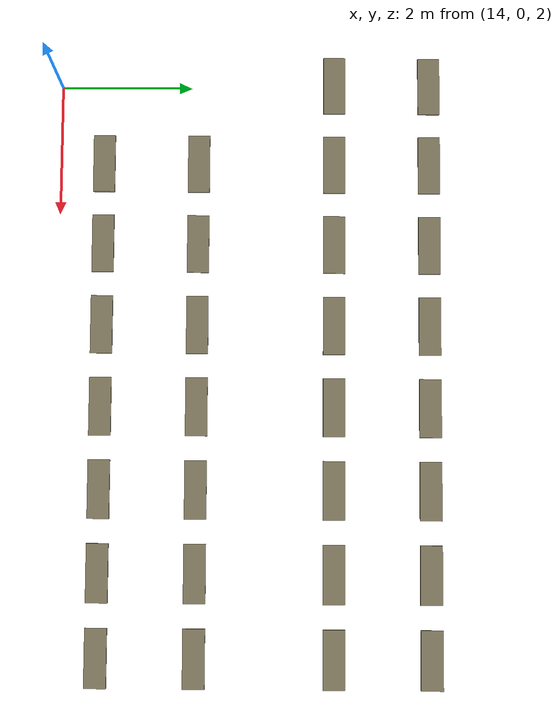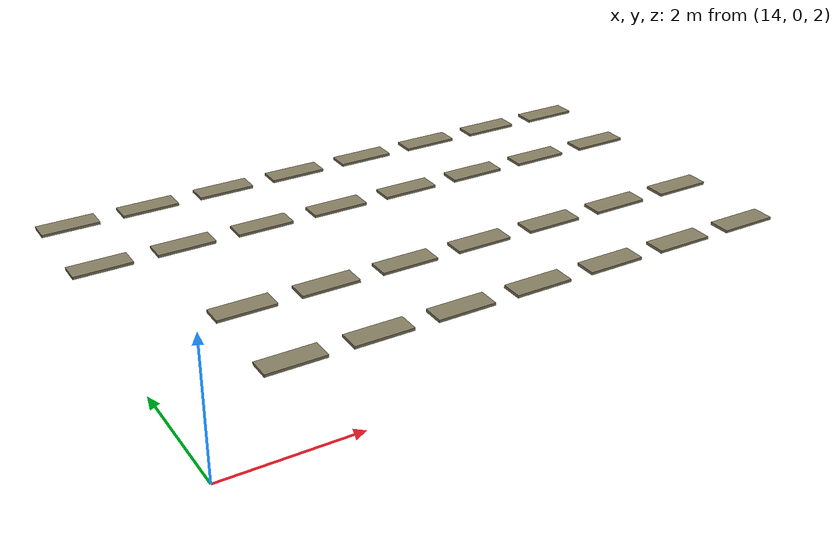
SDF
<sdf version="1.10">
 <model name="room_fluorescent_lights">
  <static>true</static>
  <link name="ceiling_lights_zone3_r1_c3">
   <pose>14.2 4.15 2.8 0 0 0</pose>
   <collision name="ceiling_lights_zone3_r1_c3_collision">
    <geometry><box><size>0.85 0.32 0.04</size></box></geometry>
   </collision>
   <visual name="ceiling_lights_zone3_r1_c3_visual">
    <pose>0 0 -0.02 0 0 0</pose>
    <geometry><box><size>0.85 0.32 0.04</size></box></geometry>
    <material>
     <ambient>0.38 0.36 0.29 1</ambient>
     <diffuse>0.52 0.49 0.38 1</diffuse>
     <emissive>0.30 0.27 0.19 1</emissive>
     <specular>0.06 0.06 0.05 1</specular>
    </material>
   </visual>
   <light name="ceiling_lights_zone3_r1_c3_spot" type="spot">
    <pose>0 0 -0.035 0 0 0</pose>
    <diffuse>0.32 0.305 0.265 1</diffuse>
    <specular>0.08 0.08 0.065 1</specular>
    <attenuation>
     <range>9.2</range>
     <constant>1.05</constant>
     <linear>0.23</linear>
     <quadratic>0.035</quadratic>
    </attenuation>
    <direction>0 0 -1</direction>
    <spot><inner_angle>1.45</inner_angle><outer_angle>2.45</outer_angle><falloff>0.5</falloff></spot>
    <cast_shadows>false</cast_shadows>
   </light>
  </link>
  <link name="ceiling_lights_zone3_r1_c4">
   <pose>14.2 5.55 2.8 0 0 0</pose>
   <collision name="ceiling_lights_zone3_r1_c4_collision">
    <geometry><box><size>0.85 0.32 0.04</size></box></geometry>
   </collision>
   <visual name="ceiling_lights_zone3_r1_c4_visual">
    <pose>0 0 -0.02 0 0 0</pose>
    <geometry><box><size>0.85 0.32 0.04</size></box></geometry>
    <material>
     <ambient>0.38 0.36 0.29 1</ambient>
     <diffuse>0.52 0.49 0.38 1</diffuse>
     <emissive>0.30 0.27 0.19 1</emissive>
     <specular>0.06 0.06 0.05 1</specular>
    </material>
   </visual>
   <light name="ceiling_lights_zone3_r1_c4_spot" type="spot">
    <pose>0 0 -0.035 0 0 0</pose>
    <diffuse>0.32 0.305 0.265 1</diffuse>
    <specular>0.08 0.08 0.065 1</specular>
    <attenuation>
     <range>9.2</range>
     <constant>1.05</constant>
     <linear>0.23</linear>
     <quadratic>0.035</quadratic>
    </attenuation>
    <direction>0 0 -1</direction>
    <spot><inner_angle>1.45</inner_angle><outer_angle>2.45</outer_angle><falloff>0.5</falloff></spot>
    <cast_shadows>false</cast_shadows>
   </light>
  </link>
  <link name="ceiling_lights_zone3_r2_c1">
   <pose>15.4 0.75 2.8 0 0 0</pose>
   <collision name="ceiling_lights_zone3_r2_c1_collision">
    <geometry><box><size>0.85 0.32 0.04</size></box></geometry>
   </collision>
   <visual name="ceiling_lights_zone3_r2_c1_visual">
    <pose>0 0 -0.02 0 0 0</pose>
    <geometry><box><size>0.85 0.32 0.04</size></box></geometry>
    <material>
     <ambient>0.38 0.36 0.29 1</ambient>
     <diffuse>0.52 0.49 0.38 1</diffuse>
     <emissive>0.30 0.27 0.19 1</emissive>
     <specular>0.06 0.06 0.05 1</specular>
    </material>
   </visual>
   <light name="ceiling_lights_zone3_r2_c1_spot" type="spot">
    <pose>0 0 -0.035 0 0 0</pose>
    <diffuse>0.32 0.305 0.265 1</diffuse>
    <specular>0.08 0.08 0.065 1</specular>
    <attenuation>
     <range>9.2</range>
     <constant>1.05</constant>
     <linear>0.23</linear>
     <quadratic>0.035</quadratic>
    </attenuation>
    <direction>0 0 -1</direction>
    <spot><inner_angle>1.45</inner_angle><outer_angle>2.45</outer_angle><falloff>0.5</falloff></spot>
    <cast_shadows>false</cast_shadows>
   </light>
  </link>
  <link name="ceiling_lights_zone3_r2_c2">
   <pose>15.4 2.15 2.8 0 0 0</pose>
   <collision name="ceiling_lights_zone3_r2_c2_collision">
    <geometry><box><size>0.85 0.32 0.04</size></box></geometry>
   </collision>
   <visual name="ceiling_lights_zone3_r2_c2_visual">
    <pose>0 0 -0.02 0 0 0</pose>
    <geometry><box><size>0.85 0.32 0.04</size></box></geometry>
    <material>
     <ambient>0.38 0.36 0.29 1</ambient>
     <diffuse>0.52 0.49 0.38 1</diffuse>
     <emissive>0.30 0.27 0.19 1</emissive>
     <specular>0.06 0.06 0.05 1</specular>
    </material>
   </visual>
   <light name="ceiling_lights_zone3_r2_c2_spot" type="spot">
    <pose>0 0 -0.035 0 0 0</pose>
    <diffuse>0.32 0.305 0.265 1</diffuse>
    <specular>0.08 0.08 0.065 1</specular>
    <attenuation>
     <range>9.2</range>
     <constant>1.05</constant>
     <linear>0.23</linear>
     <quadratic>0.035</quadratic>
    </attenuation>
    <direction>0 0 -1</direction>
    <spot><inner_angle>1.45</inner_angle><outer_angle>2.45</outer_angle><falloff>0.5</falloff></spot>
    <cast_shadows>false</cast_shadows>
   </light>
  </link>
  <link name="ceiling_lights_zone3_r2_c3">
   <pose>15.4 4.15 2.8 0 0 0</pose>
   <collision name="ceiling_lights_zone3_r2_c3_collision">
    <geometry><box><size>0.85 0.32 0.04</size></box></geometry>
   </collision>
   <visual name="ceiling_lights_zone3_r2_c3_visual">
    <pose>0 0 -0.02 0 0 0</pose>
    <geometry><box><size>0.85 0.32 0.04</size></box></geometry>
    <material>
     <ambient>0.38 0.36 0.29 1</ambient>
     <diffuse>0.52 0.49 0.38 1</diffuse>
     <emissive>0.30 0.27 0.19 1</emissive>
     <specular>0.06 0.06 0.05 1</specular>
    </material>
   </visual>
   <light name="ceiling_lights_zone3_r2_c3_spot" type="spot">
    <pose>0 0 -0.035 0 0 0</pose>
    <diffuse>0.32 0.305 0.265 1</diffuse>
    <specular>0.08 0.08 0.065 1</specular>
    <attenuation>
     <range>9.2</range>
     <constant>1.05</constant>
     <linear>0.23</linear>
     <quadratic>0.035</quadratic>
    </attenuation>
    <direction>0 0 -1</direction>
    <spot><inner_angle>1.45</inner_angle><outer_angle>2.45</outer_angle><falloff>0.5</falloff></spot>
    <cast_shadows>false</cast_shadows>
   </light>
  </link>
  <link name="ceiling_lights_zone3_r2_c4">
   <pose>15.4 5.55 2.8 0 0 0</pose>
   <collision name="ceiling_lights_zone3_r2_c4_collision">
    <geometry><box><size>0.85 0.32 0.04</size></box></geometry>
   </collision>
   <visual name="ceiling_lights_zone3_r2_c4_visual">
    <pose>0 0 -0.02 0 0 0</pose>
    <geometry><box><size>0.85 0.32 0.04</size></box></geometry>
    <material>
     <ambient>0.38 0.36 0.29 1</ambient>
     <diffuse>0.52 0.49 0.38 1</diffuse>
     <emissive>0.30 0.27 0.19 1</emissive>
     <specular>0.06 0.06 0.05 1</specular>
    </material>
   </visual>
   <light name="ceiling_lights_zone3_r2_c4_spot" type="spot">
    <pose>0 0 -0.035 0 0 0</pose>
    <diffuse>0.32 0.305 0.265 1</diffuse>
    <specular>0.08 0.08 0.065 1</specular>
    <attenuation>
     <range>9.2</range>
     <constant>1.05</constant>
     <linear>0.23</linear>
     <quadratic>0.035</quadratic>
    </attenuation>
    <direction>0 0 -1</direction>
    <spot><inner_angle>1.45</inner_angle><outer_angle>2.45</outer_angle><falloff>0.5</falloff></spot>
    <cast_shadows>false</cast_shadows>
   </light>
  </link>
  <link name="ceiling_lights_zone3_r3_c1">
   <pose>16.6 0.75 2.8 0 0 0</pose>
   <collision name="ceiling_lights_zone3_r3_c1_collision">
    <geometry><box><size>0.85 0.32 0.04</size></box></geometry>
   </collision>
   <visual name="ceiling_lights_zone3_r3_c1_visual">
    <pose>0 0 -0.02 0 0 0</pose>
    <geometry><box><size>0.85 0.32 0.04</size></box></geometry>
    <material>
     <ambient>0.38 0.36 0.29 1</ambient>
     <diffuse>0.52 0.49 0.38 1</diffuse>
     <emissive>0.30 0.27 0.19 1</emissive>
     <specular>0.06 0.06 0.05 1</specular>
    </material>
   </visual>
   <light name="ceiling_lights_zone3_r3_c1_spot" type="spot">
    <pose>0 0 -0.035 0 0 0</pose>
    <diffuse>0.32 0.305 0.265 1</diffuse>
    <specular>0.08 0.08 0.065 1</specular>
    <attenuation>
     <range>9.2</range>
     <constant>1.05</constant>
     <linear>0.23</linear>
     <quadratic>0.035</quadratic>
    </attenuation>
    <direction>0 0 -1</direction>
    <spot><inner_angle>1.45</inner_angle><outer_angle>2.45</outer_angle><falloff>0.5</falloff></spot>
    <cast_shadows>false</cast_shadows>
   </light>
  </link>
  <link name="ceiling_lights_zone3_r3_c2">
   <pose>16.6 2.15 2.8 0 0 0</pose>
   <collision name="ceiling_lights_zone3_r3_c2_collision">
    <geometry><box><size>0.85 0.32 0.04</size></box></geometry>
   </collision>
   <visual name="ceiling_lights_zone3_r3_c2_visual">
    <pose>0 0 -0.02 0 0 0</pose>
    <geometry><box><size>0.85 0.32 0.04</size></box></geometry>
    <material>
     <ambient>0.38 0.36 0.29 1</ambient>
     <diffuse>0.52 0.49 0.38 1</diffuse>
     <emissive>0.30 0.27 0.19 1</emissive>
     <specular>0.06 0.06 0.05 1</specular>
    </material>
   </visual>
   <light name="ceiling_lights_zone3_r3_c2_spot" type="spot">
    <pose>0 0 -0.035 0 0 0</pose>
    <diffuse>0.32 0.305 0.265 1</diffuse>
    <specular>0.08 0.08 0.065 1</specular>
    <attenuation>
     <range>9.2</range>
     <constant>1.05</constant>
     <linear>0.23</linear>
     <quadratic>0.035</quadratic>
    </attenuation>
    <direction>0 0 -1</direction>
    <spot><inner_angle>1.45</inner_angle><outer_angle>2.45</outer_angle><falloff>0.5</falloff></spot>
    <cast_shadows>false</cast_shadows>
   </light>
  </link>
  <link name="ceiling_lights_zone3_r3_c3">
   <pose>16.6 4.15 2.8 0 0 0</pose>
   <collision name="ceiling_lights_zone3_r3_c3_collision">
    <geometry><box><size>0.85 0.32 0.04</size></box></geometry>
   </collision>
   <visual name="ceiling_lights_zone3_r3_c3_visual">
    <pose>0 0 -0.02 0 0 0</pose>
    <geometry><box><size>0.85 0.32 0.04</size></box></geometry>
    <material>
     <ambient>0.38 0.36 0.29 1</ambient>
     <diffuse>0.52 0.49 0.38 1</diffuse>
     <emissive>0.30 0.27 0.19 1</emissive>
     <specular>0.06 0.06 0.05 1</specular>
    </material>
   </visual>
   <light name="ceiling_lights_zone3_r3_c3_spot" type="spot">
    <pose>0 0 -0.035 0 0 0</pose>
    <diffuse>0.32 0.305 0.265 1</diffuse>
    <specular>0.08 0.08 0.065 1</specular>
    <attenuation>
     <range>9.2</range>
     <constant>1.05</constant>
     <linear>0.23</linear>
     <quadratic>0.035</quadratic>
    </attenuation>
    <direction>0 0 -1</direction>
    <spot><inner_angle>1.45</inner_angle><outer_angle>2.45</outer_angle><falloff>0.5</falloff></spot>
    <cast_shadows>false</cast_shadows>
   </light>
  </link>
  <link name="ceiling_lights_zone3_r3_c4">
   <pose>16.6 5.55 2.8 0 0 0</pose>
   <collision name="ceiling_lights_zone3_r3_c4_collision">
    <geometry><box><size>0.85 0.32 0.04</size></box></geometry>
   </collision>
   <visual name="ceiling_lights_zone3_r3_c4_visual">
    <pose>0 0 -0.02 0 0 0</pose>
    <geometry><box><size>0.85 0.32 0.04</size></box></geometry>
    <material>
     <ambient>0.38 0.36 0.29 1</ambient>
     <diffuse>0.52 0.49 0.38 1</diffuse>
     <emissive>0.30 0.27 0.19 1</emissive>
     <specular>0.06 0.06 0.05 1</specular>
    </material>
   </visual>
   <light name="ceiling_lights_zone3_r3_c4_spot" type="spot">
    <pose>0 0 -0.035 0 0 0</pose>
    <diffuse>0.32 0.305 0.265 1</diffuse>
    <specular>0.08 0.08 0.065 1</specular>
    <attenuation>
     <range>9.2</range>
     <constant>1.05</constant>
     <linear>0.23</linear>
     <quadratic>0.035</quadratic>
    </attenuation>
    <direction>0 0 -1</direction>
    <spot><inner_angle>1.45</inner_angle><outer_angle>2.45</outer_angle><falloff>0.5</falloff></spot>
    <cast_shadows>false</cast_shadows>
   </light>
  </link>
  <link name="ceiling_lights_zone3_r4_c1">
   <pose>17.8 0.75 2.8 0 0 0</pose>
   <collision name="ceiling_lights_zone3_r4_c1_collision">
    <geometry><box><size>0.85 0.32 0.04</size></box></geometry>
   </collision>
   <visual name="ceiling_lights_zone3_r4_c1_visual">
    <pose>0 0 -0.02 0 0 0</pose>
    <geometry><box><size>0.85 0.32 0.04</size></box></geometry>
    <material>
     <ambient>0.38 0.36 0.29 1</ambient>
     <diffuse>0.52 0.49 0.38 1</diffuse>
     <emissive>0.30 0.27 0.19 1</emissive>
     <specular>0.06 0.06 0.05 1</specular>
    </material>
   </visual>
   <light name="ceiling_lights_zone3_r4_c1_spot" type="spot">
    <pose>0 0 -0.035 0 0 0</pose>
    <diffuse>0.32 0.305 0.265 1</diffuse>
    <specular>0.08 0.08 0.065 1</specular>
    <attenuation>
     <range>9.2</range>
     <constant>1.05</constant>
     <linear>0.23</linear>
     <quadratic>0.035</quadratic>
    </attenuation>
    <direction>0 0 -1</direction>
    <spot><inner_angle>1.45</inner_angle><outer_angle>2.45</outer_angle><falloff>0.5</falloff></spot>
    <cast_shadows>false</cast_shadows>
   </light>
  </link>
  <link name="ceiling_lights_zone3_r4_c2">
   <pose>17.8 2.15 2.8 0 0 0</pose>
   <collision name="ceiling_lights_zone3_r4_c2_collision">
    <geometry><box><size>0.85 0.32 0.04</size></box></geometry>
   </collision>
   <visual name="ceiling_lights_zone3_r4_c2_visual">
    <pose>0 0 -0.02 0 0 0</pose>
    <geometry><box><size>0.85 0.32 0.04</size></box></geometry>
    <material>
     <ambient>0.38 0.36 0.29 1</ambient>
     <diffuse>0.52 0.49 0.38 1</diffuse>
     <emissive>0.30 0.27 0.19 1</emissive>
     <specular>0.06 0.06 0.05 1</specular>
    </material>
   </visual>
   <light name="ceiling_lights_zone3_r4_c2_spot" type="spot">
    <pose>0 0 -0.035 0 0 0</pose>
    <diffuse>0.32 0.305 0.265 1</diffuse>
    <specular>0.08 0.08 0.065 1</specular>
    <attenuation>
     <range>9.2</range>
     <constant>1.05</constant>
     <linear>0.23</linear>
     <quadratic>0.035</quadratic>
    </attenuation>
    <direction>0 0 -1</direction>
    <spot><inner_angle>1.45</inner_angle><outer_angle>2.45</outer_angle><falloff>0.5</falloff></spot>
    <cast_shadows>false</cast_shadows>
   </light>
  </link>
  <link name="ceiling_lights_zone3_r4_c3">
   <pose>17.8 4.15 2.8 0 0 0</pose>
   <collision name="ceiling_lights_zone3_r4_c3_collision">
    <geometry><box><size>0.85 0.32 0.04</size></box></geometry>
   </collision>
   <visual name="ceiling_lights_zone3_r4_c3_visual">
    <pose>0 0 -0.02 0 0 0</pose>
    <geometry><box><size>0.85 0.32 0.04</size></box></geometry>
    <material>
     <ambient>0.38 0.36 0.29 1</ambient>
     <diffuse>0.52 0.49 0.38 1</diffuse>
     <emissive>0.30 0.27 0.19 1</emissive>
     <specular>0.06 0.06 0.05 1</specular>
    </material>
   </visual>
   <light name="ceiling_lights_zone3_r4_c3_spot" type="spot">
    <pose>0 0 -0.035 0 0 0</pose>
    <diffuse>0.32 0.305 0.265 1</diffuse>
    <specular>0.08 0.08 0.065 1</specular>
    <attenuation>
     <range>9.2</range>
     <constant>1.05</constant>
     <linear>0.23</linear>
     <quadratic>0.035</quadratic>
    </attenuation>
    <direction>0 0 -1</direction>
    <spot><inner_angle>1.45</inner_angle><outer_angle>2.45</outer_angle><falloff>0.5</falloff></spot>
    <cast_shadows>false</cast_shadows>
   </light>
  </link>
  <link name="ceiling_lights_zone3_r4_c4">
   <pose>17.8 5.55 2.8 0 0 0</pose>
   <collision name="ceiling_lights_zone3_r4_c4_collision">
    <geometry><box><size>0.85 0.32 0.04</size></box></geometry>
   </collision>
   <visual name="ceiling_lights_zone3_r4_c4_visual">
    <pose>0 0 -0.02 0 0 0</pose>
    <geometry><box><size>0.85 0.32 0.04</size></box></geometry>
    <material>
     <ambient>0.38 0.36 0.29 1</ambient>
     <diffuse>0.52 0.49 0.38 1</diffuse>
     <emissive>0.30 0.27 0.19 1</emissive>
     <specular>0.06 0.06 0.05 1</specular>
    </material>
   </visual>
   <light name="ceiling_lights_zone3_r4_c4_spot" type="spot">
    <pose>0 0 -0.035 0 0 0</pose>
    <diffuse>0.32 0.305 0.265 1</diffuse>
    <specular>0.08 0.08 0.065 1</specular>
    <attenuation>
     <range>9.2</range>
     <constant>1.05</constant>
     <linear>0.23</linear>
     <quadratic>0.035</quadratic>
    </attenuation>
    <direction>0 0 -1</direction>
    <spot><inner_angle>1.45</inner_angle><outer_angle>2.45</outer_angle><falloff>0.5</falloff></spot>
    <cast_shadows>false</cast_shadows>
   </light>
  </link>
  <link name="ceiling_lights_zone3_r5_c1">
   <pose>19 0.75 2.8 0 0 0</pose>
   <collision name="ceiling_lights_zone3_r5_c1_collision">
    <geometry><box><size>0.85 0.32 0.04</size></box></geometry>
   </collision>
   <visual name="ceiling_lights_zone3_r5_c1_visual">
    <pose>0 0 -0.02 0 0 0</pose>
    <geometry><box><size>0.85 0.32 0.04</size></box></geometry>
    <material>
     <ambient>0.38 0.36 0.29 1</ambient>
     <diffuse>0.52 0.49 0.38 1</diffuse>
     <emissive>0.30 0.27 0.19 1</emissive>
     <specular>0.06 0.06 0.05 1</specular>
    </material>
   </visual>
   <light name="ceiling_lights_zone3_r5_c1_spot" type="spot">
    <pose>0 0 -0.035 0 0 0</pose>
    <diffuse>0.32 0.305 0.265 1</diffuse>
    <specular>0.08 0.08 0.065 1</specular>
    <attenuation>
     <range>9.2</range>
     <constant>1.05</constant>
     <linear>0.23</linear>
     <quadratic>0.035</quadratic>
    </attenuation>
    <direction>0 0 -1</direction>
    <spot><inner_angle>1.45</inner_angle><outer_angle>2.45</outer_angle><falloff>0.5</falloff></spot>
    <cast_shadows>false</cast_shadows>
   </light>
  </link>
  <link name="ceiling_lights_zone3_r5_c2">
   <pose>19 2.15 2.8 0 0 0</pose>
   <collision name="ceiling_lights_zone3_r5_c2_collision">
    <geometry><box><size>0.85 0.32 0.04</size></box></geometry>
   </collision>
   <visual name="ceiling_lights_zone3_r5_c2_visual">
    <pose>0 0 -0.02 0 0 0</pose>
    <geometry><box><size>0.85 0.32 0.04</size></box></geometry>
    <material>
     <ambient>0.38 0.36 0.29 1</ambient>
     <diffuse>0.52 0.49 0.38 1</diffuse>
     <emissive>0.30 0.27 0.19 1</emissive>
     <specular>0.06 0.06 0.05 1</specular>
    </material>
   </visual>
   <light name="ceiling_lights_zone3_r5_c2_spot" type="spot">
    <pose>0 0 -0.035 0 0 0</pose>
    <diffuse>0.32 0.305 0.265 1</diffuse>
    <specular>0.08 0.08 0.065 1</specular>
    <attenuation>
     <range>9.2</range>
     <constant>1.05</constant>
     <linear>0.23</linear>
     <quadratic>0.035</quadratic>
    </attenuation>
    <direction>0 0 -1</direction>
    <spot><inner_angle>1.45</inner_angle><outer_angle>2.45</outer_angle><falloff>0.5</falloff></spot>
    <cast_shadows>false</cast_shadows>
   </light>
  </link>
  <link name="ceiling_lights_zone3_r5_c3">
   <pose>19 4.15 2.8 0 0 0</pose>
   <collision name="ceiling_lights_zone3_r5_c3_collision">
    <geometry><box><size>0.85 0.32 0.04</size></box></geometry>
   </collision>
   <visual name="ceiling_lights_zone3_r5_c3_visual">
    <pose>0 0 -0.02 0 0 0</pose>
    <geometry><box><size>0.85 0.32 0.04</size></box></geometry>
    <material>
     <ambient>0.38 0.36 0.29 1</ambient>
     <diffuse>0.52 0.49 0.38 1</diffuse>
     <emissive>0.30 0.27 0.19 1</emissive>
     <specular>0.06 0.06 0.05 1</specular>
    </material>
   </visual>
   <light name="ceiling_lights_zone3_r5_c3_spot" type="spot">
    <pose>0 0 -0.035 0 0 0</pose>
    <diffuse>0.32 0.305 0.265 1</diffuse>
    <specular>0.08 0.08 0.065 1</specular>
    <attenuation>
     <range>9.2</range>
     <constant>1.05</constant>
     <linear>0.23</linear>
     <quadratic>0.035</quadratic>
    </attenuation>
    <direction>0 0 -1</direction>
    <spot><inner_angle>1.45</inner_angle><outer_angle>2.45</outer_angle><falloff>0.5</falloff></spot>
    <cast_shadows>false</cast_shadows>
   </light>
  </link>
  <link name="ceiling_lights_zone3_r5_c4">
   <pose>19 5.55 2.8 0 0 0</pose>
   <collision name="ceiling_lights_zone3_r5_c4_collision">
    <geometry><box><size>0.85 0.32 0.04</size></box></geometry>
   </collision>
   <visual name="ceiling_lights_zone3_r5_c4_visual">
    <pose>0 0 -0.02 0 0 0</pose>
    <geometry><box><size>0.85 0.32 0.04</size></box></geometry>
    <material>
     <ambient>0.38 0.36 0.29 1</ambient>
     <diffuse>0.52 0.49 0.38 1</diffuse>
     <emissive>0.30 0.27 0.19 1</emissive>
     <specular>0.06 0.06 0.05 1</specular>
    </material>
   </visual>
   <light name="ceiling_lights_zone3_r5_c4_spot" type="spot">
    <pose>0 0 -0.035 0 0 0</pose>
    <diffuse>0.32 0.305 0.265 1</diffuse>
    <specular>0.08 0.08 0.065 1</specular>
    <attenuation>
     <range>9.2</range>
     <constant>1.05</constant>
     <linear>0.23</linear>
     <quadratic>0.035</quadratic>
    </attenuation>
    <direction>0 0 -1</direction>
    <spot><inner_angle>1.45</inner_angle><outer_angle>2.45</outer_angle><falloff>0.5</falloff></spot>
    <cast_shadows>false</cast_shadows>
   </light>
  </link>
  <link name="ceiling_lights_zone3_r6_c1">
   <pose>20.2 0.75 2.8 0 0 0</pose>
   <collision name="ceiling_lights_zone3_r6_c1_collision">
    <geometry><box><size>0.85 0.32 0.04</size></box></geometry>
   </collision>
   <visual name="ceiling_lights_zone3_r6_c1_visual">
    <pose>0 0 -0.02 0 0 0</pose>
    <geometry><box><size>0.85 0.32 0.04</size></box></geometry>
    <material>
     <ambient>0.38 0.36 0.29 1</ambient>
     <diffuse>0.52 0.49 0.38 1</diffuse>
     <emissive>0.30 0.27 0.19 1</emissive>
     <specular>0.06 0.06 0.05 1</specular>
    </material>
   </visual>
   <light name="ceiling_lights_zone3_r6_c1_spot" type="spot">
    <pose>0 0 -0.035 0 0 0</pose>
    <diffuse>0.32 0.305 0.265 1</diffuse>
    <specular>0.08 0.08 0.065 1</specular>
    <attenuation>
     <range>9.2</range>
     <constant>1.05</constant>
     <linear>0.23</linear>
     <quadratic>0.035</quadratic>
    </attenuation>
    <direction>0 0 -1</direction>
    <spot><inner_angle>1.45</inner_angle><outer_angle>2.45</outer_angle><falloff>0.5</falloff></spot>
    <cast_shadows>false</cast_shadows>
   </light>
  </link>
  <link name="ceiling_lights_zone3_r6_c2">
   <pose>20.2 2.15 2.8 0 0 0</pose>
   <collision name="ceiling_lights_zone3_r6_c2_collision">
    <geometry><box><size>0.85 0.32 0.04</size></box></geometry>
   </collision>
   <visual name="ceiling_lights_zone3_r6_c2_visual">
    <pose>0 0 -0.02 0 0 0</pose>
    <geometry><box><size>0.85 0.32 0.04</size></box></geometry>
    <material>
     <ambient>0.38 0.36 0.29 1</ambient>
     <diffuse>0.52 0.49 0.38 1</diffuse>
     <emissive>0.30 0.27 0.19 1</emissive>
     <specular>0.06 0.06 0.05 1</specular>
    </material>
   </visual>
   <light name="ceiling_lights_zone3_r6_c2_spot" type="spot">
    <pose>0 0 -0.035 0 0 0</pose>
    <diffuse>0.32 0.305 0.265 1</diffuse>
    <specular>0.08 0.08 0.065 1</specular>
    <attenuation>
     <range>9.2</range>
     <constant>1.05</constant>
     <linear>0.23</linear>
     <quadratic>0.035</quadratic>
    </attenuation>
    <direction>0 0 -1</direction>
    <spot><inner_angle>1.45</inner_angle><outer_angle>2.45</outer_angle><falloff>0.5</falloff></spot>
    <cast_shadows>false</cast_shadows>
   </light>
  </link>
  <link name="ceiling_lights_zone3_r6_c3">
   <pose>20.2 4.15 2.8 0 0 0</pose>
   <collision name="ceiling_lights_zone3_r6_c3_collision">
    <geometry><box><size>0.85 0.32 0.04</size></box></geometry>
   </collision>
   <visual name="ceiling_lights_zone3_r6_c3_visual">
    <pose>0 0 -0.02 0 0 0</pose>
    <geometry><box><size>0.85 0.32 0.04</size></box></geometry>
    <material>
     <ambient>0.38 0.36 0.29 1</ambient>
     <diffuse>0.52 0.49 0.38 1</diffuse>
     <emissive>0.30 0.27 0.19 1</emissive>
     <specular>0.06 0.06 0.05 1</specular>
    </material>
   </visual>
   <light name="ceiling_lights_zone3_r6_c3_spot" type="spot">
    <pose>0 0 -0.035 0 0 0</pose>
    <diffuse>0.32 0.305 0.265 1</diffuse>
    <specular>0.08 0.08 0.065 1</specular>
    <attenuation>
     <range>9.2</range>
     <constant>1.05</constant>
     <linear>0.23</linear>
     <quadratic>0.035</quadratic>
    </attenuation>
    <direction>0 0 -1</direction>
    <spot><inner_angle>1.45</inner_angle><outer_angle>2.45</outer_angle><falloff>0.5</falloff></spot>
    <cast_shadows>false</cast_shadows>
   </light>
  </link>
  <link name="ceiling_lights_zone3_r6_c4">
   <pose>20.2 5.55 2.8 0 0 0</pose>
   <collision name="ceiling_lights_zone3_r6_c4_collision">
    <geometry><box><size>0.85 0.32 0.04</size></box></geometry>
   </collision>
   <visual name="ceiling_lights_zone3_r6_c4_visual">
    <pose>0 0 -0.02 0 0 0</pose>
    <geometry><box><size>0.85 0.32 0.04</size></box></geometry>
    <material>
     <ambient>0.38 0.36 0.29 1</ambient>
     <diffuse>0.52 0.49 0.38 1</diffuse>
     <emissive>0.30 0.27 0.19 1</emissive>
     <specular>0.06 0.06 0.05 1</specular>
    </material>
   </visual>
   <light name="ceiling_lights_zone3_r6_c4_spot" type="spot">
    <pose>0 0 -0.035 0 0 0</pose>
    <diffuse>0.32 0.305 0.265 1</diffuse>
    <specular>0.08 0.08 0.065 1</specular>
    <attenuation>
     <range>9.2</range>
     <constant>1.05</constant>
     <linear>0.23</linear>
     <quadratic>0.035</quadratic>
    </attenuation>
    <direction>0 0 -1</direction>
    <spot><inner_angle>1.45</inner_angle><outer_angle>2.45</outer_angle><falloff>0.5</falloff></spot>
    <cast_shadows>false</cast_shadows>
   </light>
  </link>
  <link name="ceiling_lights_zone3_r7_c1">
   <pose>21.4 0.75 2.8 0 0 0</pose>
   <collision name="ceiling_lights_zone3_r7_c1_collision">
    <geometry><box><size>0.85 0.32 0.04</size></box></geometry>
   </collision>
   <visual name="ceiling_lights_zone3_r7_c1_visual">
    <pose>0 0 -0.02 0 0 0</pose>
    <geometry><box><size>0.85 0.32 0.04</size></box></geometry>
    <material>
     <ambient>0.38 0.36 0.29 1</ambient>
     <diffuse>0.52 0.49 0.38 1</diffuse>
     <emissive>0.30 0.27 0.19 1</emissive>
     <specular>0.06 0.06 0.05 1</specular>
    </material>
   </visual>
   <light name="ceiling_lights_zone3_r7_c1_spot" type="spot">
    <pose>0 0 -0.035 0 0 0</pose>
    <diffuse>0.32 0.305 0.265 1</diffuse>
    <specular>0.08 0.08 0.065 1</specular>
    <attenuation>
     <range>9.2</range>
     <constant>1.05</constant>
     <linear>0.23</linear>
     <quadratic>0.035</quadratic>
    </attenuation>
    <direction>0 0 -1</direction>
    <spot><inner_angle>1.45</inner_angle><outer_angle>2.45</outer_angle><falloff>0.5</falloff></spot>
    <cast_shadows>false</cast_shadows>
   </light>
  </link>
  <link name="ceiling_lights_zone3_r7_c2">
   <pose>21.4 2.15 2.8 0 0 0</pose>
   <collision name="ceiling_lights_zone3_r7_c2_collision">
    <geometry><box><size>0.85 0.32 0.04</size></box></geometry>
   </collision>
   <visual name="ceiling_lights_zone3_r7_c2_visual">
    <pose>0 0 -0.02 0 0 0</pose>
    <geometry><box><size>0.85 0.32 0.04</size></box></geometry>
    <material>
     <ambient>0.38 0.36 0.29 1</ambient>
     <diffuse>0.52 0.49 0.38 1</diffuse>
     <emissive>0.30 0.27 0.19 1</emissive>
     <specular>0.06 0.06 0.05 1</specular>
    </material>
   </visual>
   <light name="ceiling_lights_zone3_r7_c2_spot" type="spot">
    <pose>0 0 -0.035 0 0 0</pose>
    <diffuse>0.32 0.305 0.265 1</diffuse>
    <specular>0.08 0.08 0.065 1</specular>
    <attenuation>
     <range>9.2</range>
     <constant>1.05</constant>
     <linear>0.23</linear>
     <quadratic>0.035</quadratic>
    </attenuation>
    <direction>0 0 -1</direction>
    <spot><inner_angle>1.45</inner_angle><outer_angle>2.45</outer_angle><falloff>0.5</falloff></spot>
    <cast_shadows>false</cast_shadows>
   </light>
  </link>
  <link name="ceiling_lights_zone3_r7_c3">
   <pose>21.4 4.15 2.8 0 0 0</pose>
   <collision name="ceiling_lights_zone3_r7_c3_collision">
    <geometry><box><size>0.85 0.32 0.04</size></box></geometry>
   </collision>
   <visual name="ceiling_lights_zone3_r7_c3_visual">
    <pose>0 0 -0.02 0 0 0</pose>
    <geometry><box><size>0.85 0.32 0.04</size></box></geometry>
    <material>
     <ambient>0.38 0.36 0.29 1</ambient>
     <diffuse>0.52 0.49 0.38 1</diffuse>
     <emissive>0.30 0.27 0.19 1</emissive>
     <specular>0.06 0.06 0.05 1</specular>
    </material>
   </visual>
   <light name="ceiling_lights_zone3_r7_c3_spot" type="spot">
    <pose>0 0 -0.035 0 0 0</pose>
    <diffuse>0.32 0.305 0.265 1</diffuse>
    <specular>0.08 0.08 0.065 1</specular>
    <attenuation>
     <range>9.2</range>
     <constant>1.05</constant>
     <linear>0.23</linear>
     <quadratic>0.035</quadratic>
    </attenuation>
    <direction>0 0 -1</direction>
    <spot><inner_angle>1.45</inner_angle><outer_angle>2.45</outer_angle><falloff>0.5</falloff></spot>
    <cast_shadows>false</cast_shadows>
   </light>
  </link>
  <link name="ceiling_lights_zone3_r7_c4">
   <pose>21.4 5.55 2.8 0 0 0</pose>
   <collision name="ceiling_lights_zone3_r7_c4_collision">
    <geometry><box><size>0.85 0.32 0.04</size></box></geometry>
   </collision>
   <visual name="ceiling_lights_zone3_r7_c4_visual">
    <pose>0 0 -0.02 0 0 0</pose>
    <geometry><box><size>0.85 0.32 0.04</size></box></geometry>
    <material>
     <ambient>0.38 0.36 0.29 1</ambient>
     <diffuse>0.52 0.49 0.38 1</diffuse>
     <emissive>0.30 0.27 0.19 1</emissive>
     <specular>0.06 0.06 0.05 1</specular>
    </material>
   </visual>
   <light name="ceiling_lights_zone3_r7_c4_spot" type="spot">
    <pose>0 0 -0.035 0 0 0</pose>
    <diffuse>0.32 0.305 0.265 1</diffuse>
    <specular>0.08 0.08 0.065 1</specular>
    <attenuation>
     <range>9.2</range>
     <constant>1.05</constant>
     <linear>0.23</linear>
     <quadratic>0.035</quadratic>
    </attenuation>
    <direction>0 0 -1</direction>
    <spot><inner_angle>1.45</inner_angle><outer_angle>2.45</outer_angle><falloff>0.5</falloff></spot>
    <cast_shadows>false</cast_shadows>
   </light>
  </link>
  <link name="ceiling_lights_zone3_r8_c1">
   <pose>22.6 0.75 2.8 0 0 0</pose>
   <collision name="ceiling_lights_zone3_r8_c1_collision">
    <geometry><box><size>0.85 0.32 0.04</size></box></geometry>
   </collision>
   <visual name="ceiling_lights_zone3_r8_c1_visual">
    <pose>0 0 -0.02 0 0 0</pose>
    <geometry><box><size>0.85 0.32 0.04</size></box></geometry>
    <material>
     <ambient>0.38 0.36 0.29 1</ambient>
     <diffuse>0.52 0.49 0.38 1</diffuse>
     <emissive>0.30 0.27 0.19 1</emissive>
     <specular>0.06 0.06 0.05 1</specular>
    </material>
   </visual>
   <light name="ceiling_lights_zone3_r8_c1_spot" type="spot">
    <pose>0 0 -0.035 0 0 0</pose>
    <diffuse>0.32 0.305 0.265 1</diffuse>
    <specular>0.08 0.08 0.065 1</specular>
    <attenuation>
     <range>9.2</range>
     <constant>1.05</constant>
     <linear>0.23</linear>
     <quadratic>0.035</quadratic>
    </attenuation>
    <direction>0 0 -1</direction>
    <spot><inner_angle>1.45</inner_angle><outer_angle>2.45</outer_angle><falloff>0.5</falloff></spot>
    <cast_shadows>false</cast_shadows>
   </light>
  </link>
  <link name="ceiling_lights_zone3_r8_c2">
   <pose>22.6 2.15 2.8 0 0 0</pose>
   <collision name="ceiling_lights_zone3_r8_c2_collision">
    <geometry><box><size>0.85 0.32 0.04</size></box></geometry>
   </collision>
   <visual name="ceiling_lights_zone3_r8_c2_visual">
    <pose>0 0 -0.02 0 0 0</pose>
    <geometry><box><size>0.85 0.32 0.04</size></box></geometry>
    <material>
     <ambient>0.38 0.36 0.29 1</ambient>
     <diffuse>0.52 0.49 0.38 1</diffuse>
     <emissive>0.30 0.27 0.19 1</emissive>
     <specular>0.06 0.06 0.05 1</specular>
    </material>
   </visual>
   <light name="ceiling_lights_zone3_r8_c2_spot" type="spot">
    <pose>0 0 -0.035 0 0 0</pose>
    <diffuse>0.32 0.305 0.265 1</diffuse>
    <specular>0.08 0.08 0.065 1</specular>
    <attenuation>
     <range>9.2</range>
     <constant>1.05</constant>
     <linear>0.23</linear>
     <quadratic>0.035</quadratic>
    </attenuation>
    <direction>0 0 -1</direction>
    <spot><inner_angle>1.45</inner_angle><outer_angle>2.45</outer_angle><falloff>0.5</falloff></spot>
    <cast_shadows>false</cast_shadows>
   </light>
  </link>
  <link name="ceiling_lights_zone3_r8_c3">
   <pose>22.6 4.15 2.8 0 0 0</pose>
   <collision name="ceiling_lights_zone3_r8_c3_collision">
    <geometry><box><size>0.85 0.32 0.04</size></box></geometry>
   </collision>
   <visual name="ceiling_lights_zone3_r8_c3_visual">
    <pose>0 0 -0.02 0 0 0</pose>
    <geometry><box><size>0.85 0.32 0.04</size></box></geometry>
    <material>
     <ambient>0.38 0.36 0.29 1</ambient>
     <diffuse>0.52 0.49 0.38 1</diffuse>
     <emissive>0.30 0.27 0.19 1</emissive>
     <specular>0.06 0.06 0.05 1</specular>
    </material>
   </visual>
   <light name="ceiling_lights_zone3_r8_c3_spot" type="spot">
    <pose>0 0 -0.035 0 0 0</pose>
    <diffuse>0.32 0.305 0.265 1</diffuse>
    <specular>0.08 0.08 0.065 1</specular>
    <attenuation>
     <range>9.2</range>
     <constant>1.05</constant>
     <linear>0.23</linear>
     <quadratic>0.035</quadratic>
    </attenuation>
    <direction>0 0 -1</direction>
    <spot><inner_angle>1.45</inner_angle><outer_angle>2.45</outer_angle><falloff>0.5</falloff></spot>
    <cast_shadows>false</cast_shadows>
   </light>
  </link>
  <link name="ceiling_lights_zone3_r8_c4">
   <pose>22.6 5.55 2.8 0 0 0</pose>
   <collision name="ceiling_lights_zone3_r8_c4_collision">
    <geometry><box><size>0.85 0.32 0.04</size></box></geometry>
   </collision>
   <visual name="ceiling_lights_zone3_r8_c4_visual">
    <pose>0 0 -0.02 0 0 0</pose>
    <geometry><box><size>0.85 0.32 0.04</size></box></geometry>
    <material>
     <ambient>0.38 0.36 0.29 1</ambient>
     <diffuse>0.52 0.49 0.38 1</diffuse>
     <emissive>0.30 0.27 0.19 1</emissive>
     <specular>0.06 0.06 0.05 1</specular>
    </material>
   </visual>
   <light name="ceiling_lights_zone3_r8_c4_spot" type="spot">
    <pose>0 0 -0.035 0 0 0</pose>
    <diffuse>0.32 0.305 0.265 1</diffuse>
    <specular>0.08 0.08 0.065 1</specular>
    <attenuation>
     <range>9.2</range>
     <constant>1.05</constant>
     <linear>0.23</linear>
     <quadratic>0.035</quadratic>
    </attenuation>
    <direction>0 0 -1</direction>
    <spot><inner_angle>1.45</inner_angle><outer_angle>2.45</outer_angle><falloff>0.5</falloff></spot>
    <cast_shadows>false</cast_shadows>
   </light>
  </link>
 </model>
</sdf>
